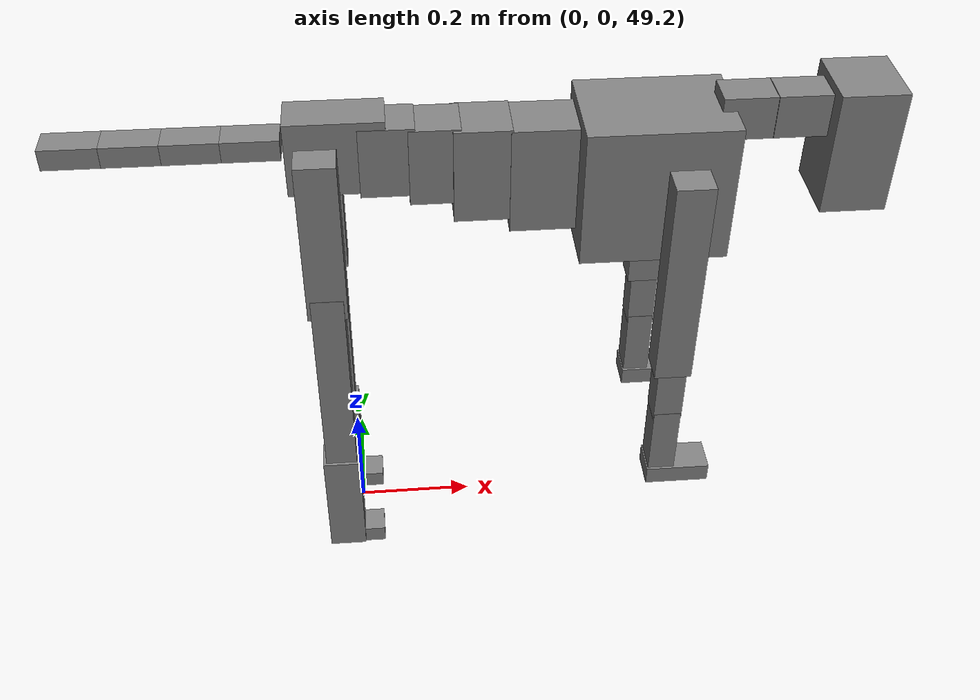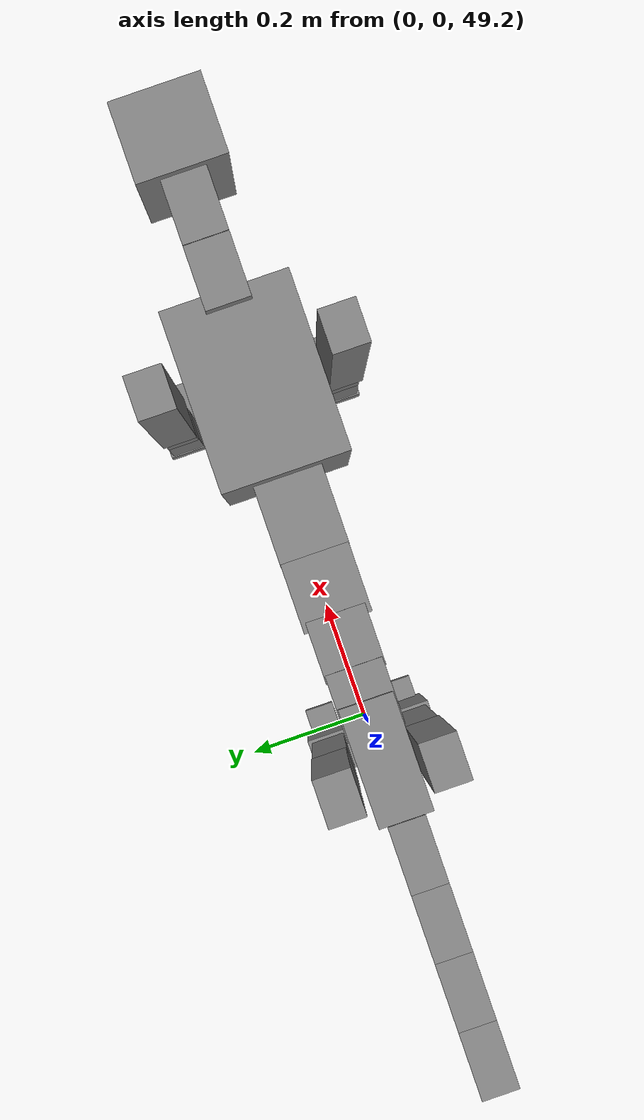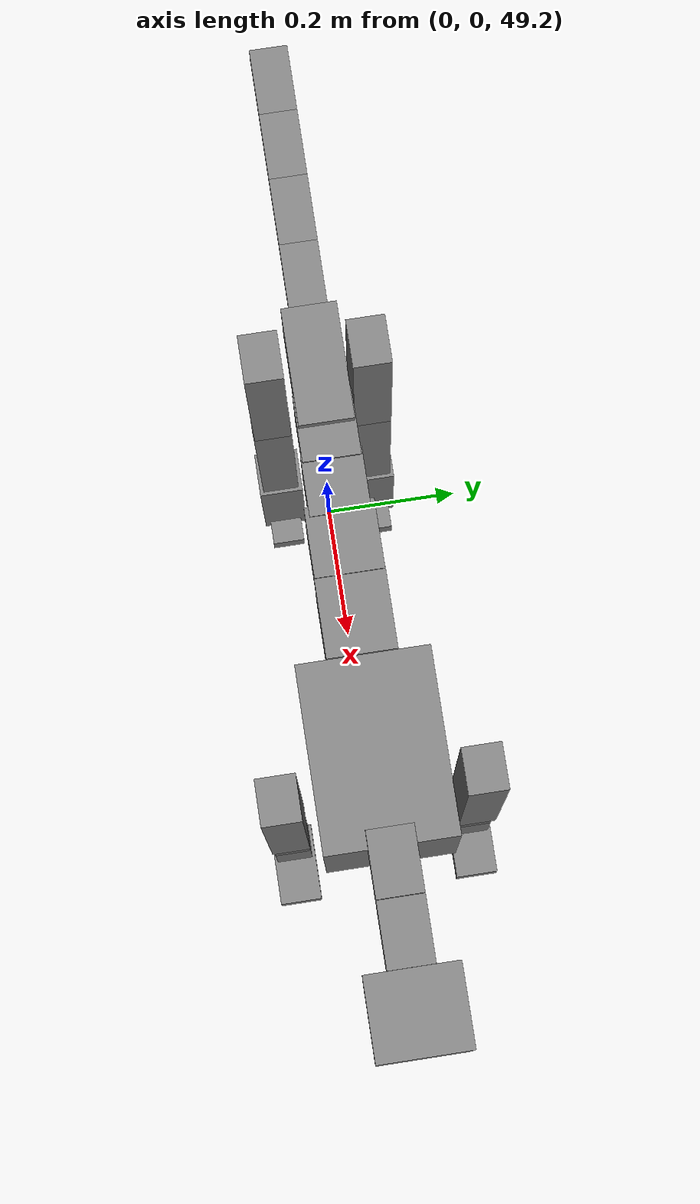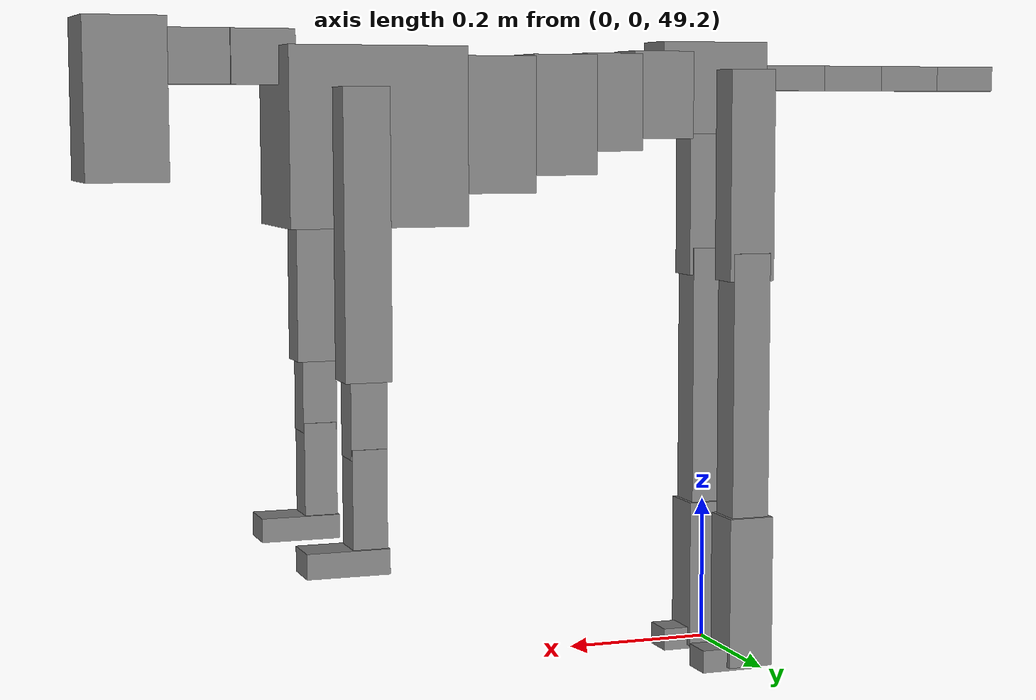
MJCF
<mujoco model="dog">

    <default>
        <joint armature="0.02" stiffness="1" damping="0.2" limited="true"/>
        <geom condim="3" friction="1 0.05 0.05" margin="0.01"/>
        <motor ctrllimited="true" ctrlrange="-1.0 1.0" forcelimited="true" gear="50"/>
    </default>

    <compiler inertiafromgeom="true" angle="radian"/>

    <option timestep="0.016" iterations="50" tolerance="1e-10" solver="Newton" jacobian="dense" cone="pyramidal"/>

    <size nconmax="20000" njmax="60000" nstack="5000000"/>
    <visual>
        <map force="0.1" zfar="30"/>
        <rgba haze="0.15 0.25 0.35 1"/>
        <quality shadowsize="2048"/>
        <global offwidth="800" offheight="800"/>
    </visual>

    <asset>
        <texture type="skybox" builtin="gradient" rgb1="0.3 0.5 0.7" rgb2="0 0 0" width="512" height="512"/>
        <texture name="texplane" type="2d" builtin="checker" rgb1=".2 .3 .4" rgb2=".1 0.15 0.2" width="512" height="512"
                 mark="cross" markrgb=".8 .8 .8"/>
        <texture name="texgeom" type="cube" builtin="flat" mark="cross" width="127" height="1278" rgb1="0.8 0.6 0.4"
                 rgb2="0.8 0.6 0.4" markrgb="1 1 1" random="0.01"/>

        <material name="matplane" reflectance="0.3" texture="texplane" texrepeat="1 1" texuniform="true"/>
        <material name="matgeom" texture="texgeom" texuniform="true" rgba="0.8 0.6 .4 1"/>
    </asset>

    <worldbody>
        <geom name="floor" pos="0 0 0" size="0 0 .25" type="plane" material="matplane" condim="3"/>

        <light directional="false" diffuse=".2 .2 .2" specular="0 0 0" pos="0 0 5" dir="0 0 -1" castshadow="false"/>
        <light mode="targetbodycom" target="torso" directional="false" diffuse=".8 .8 .8" specular="0.3 0.3 0.3"
               pos="0 0 4.0" dir="0 0 -1"/>

        <body name="root" pos="0 0 50">
            <freejoint name="root_1"/>
            <geom type="box" pos="0 0 -0.02" size="0.0774  0.0358  0.063" density="2030"/>

            <body name="spine1" pos="0.054 0 0">
                <joint name="spine1_y" axis="0 1 0" range="0 0.7" limited="true"/>
                <geom type="box" pos="0.02375 0 -0.03" size="0.04375  0.0375  0.05985" density="2030"/>

                <body name="spine2" pos="0.0612 0 0">
                    <joint name="spine2_y" axis="0 1 0" range="-0.15 0.15" limited="true"/>
                    <geom type="box" pos="0.03555  0  -0.04" size="0.04055  0.039  0.06615" density="2030"/>

                    <body name="spine3" pos="0.0730 0 0">
                        <joint name="spine3_y" axis="0 1 0" range="-0.15 0.15" limited="true"/>
                        <geom type="box" pos="0.03555  0  -0.057" size="0.04555  0.0445  0.081" density="2030"/>

                        <body name="spine4" pos="0.0780 0 0">
                            <joint name="spine4_y" axis="0 1 0" range="-0.15 0.15" limited="true"/>
                            <geom type="box" pos="0.05265  0  -0.07" size="0.05265  0.045  0.09135" density="2030"/>

                            <body name="torso" pos="0.1082 0 0">
                                <joint name="torso_y" axis="0 1 0" range="-0.15 0.15" limited="true"/>
                                <geom type="box" pos="0.11925  0  -0.085" size="0.11925  0.085  0.11745"
                                      density="2030"/>

                                <body name="neck1" pos="0.2160  0   0.0180">
                                    <joint name="neck1_y" axis="0 1 0" range="-1.2  -1" limited="true"/>
                                    <geom type="box" pos="0.0423  0  0" size="0.0423  0.03  0.036" density="2325"/>

                                    <body name="neck2" pos="0.0853  0  0">
                                        <joint name="neck2_y" axis="0 1 0" range="0.1  0" limited="true"/>
                                        <geom type="box" pos="0.0423  0  0" size="0.0423  0.03  0.036" density="2325"/>

                                        <body name="head" pos="0.0853  0  0">
                                            <joint name="head_y" axis="0 1 0" range="-0.3  -0.2" limited="true"/>
                                            <geom type="box" pos="0.0531  0  -0.055" size="0.0531  0.06  0.1044"
                                                  density="4030"/>

                                        </body>
                                    </body>
                                </body>

                                <body name="front_shoulder" pos="0.156  0   -0.0480">
                                    <joint name="front_shoulder_y" axis="0 1 0" range="-1 1.5" limited="true"/>
                                    <geom type="box" pos="0 0.13 -0.1601" size="0.0306  0.0261  0.1867" density="1158"/>
                                    <geom type="box" pos="0 -0.13 -0.1601" size="0.0306  0.0261  0.1867"
                                          density="1158"/>

                                    <body name="front_elbow" pos="0  0  -0.3202">
                                        <joint name="front_elbow_y" axis="0 1 0" range="-2 0" limited="true"/>
                                        <geom type="box" pos="0 0.13 -0.0626" size="0.0238  0.0243  0.0626"
                                              density="1081"/>
                                        <geom type="box" pos="0 -0.13 -0.0626" size="0.0238  0.0243  0.0626"
                                              density="1081"/>

                                        <body name="front_wrist" pos="0  0  -0.1253">
                                            <joint name="front_wrist_y" axis="0 1 0" range="-0.2 0" limited="true"/>
                                            <geom type="box" pos="0 0.13 -0.0653" size="0.0228  0.0253  0.0785"
                                                  density="1664"/>
                                            <geom type="box" pos="0 -0.13 -0.0653" size="0.0228  0.0253  0.0785"
                                                  density="1664"/>

                                            <body name="front_finger_end" pos="0  0  -0.1306">
                                                <joint name="front_finger_y" axis="0 1 0" range="-0.4 1"
                                                       limited="true"/>
                                                <geom type="box" pos="0.0298  0.13  -0.0015"
                                                      size="0.0546  0.0298  0.0165" density="1515"/>
                                                <geom type="box" pos="0.0298  -0.13  -0.0015"
                                                      size="0.0546  0.0298  0.0165" density="1515"/>

                                            </body>

                                        </body>
                                    </body>
                                </body>

                            </body>
                        </body>
                    </body>
                </body>
            </body>

            <body name="back_hip" pos="-0.03 0 -0.018">
                <joint name="back_hip_y" axis="0 1 0" range="-1.5 0.3" limited="true"/>
                <geom type="box" pos="0 0.07 -0.1220" size="0.0326  0.0256  0.1448" density="1154"/>
                <geom type="box" pos="0 -0.07 -0.1220" size="0.0326  0.0256  0.1448" density="1154"/>

                <body name="back_knee" pos="0  0  -0.2441">
                    <joint name="back_knee_y" axis="0 1 0" range="0 2.8" limited="true"/>
                    <geom type="box" pos="0 0.07 -0.1813" size="0.0270  0.0266  0.1969" density="1227"/>
                    <geom type="box" pos="0 -0.07 -0.1813" size="0.0270  0.0266  0.1969" density="1227"/>

                    <body name="back_ankle" pos="0  0  -0.3627">
                        <joint name="back_ankle_y" axis="0 1 0" range="-2.2 0" limited="true"/>
                        <geom type="box" pos="0 0.07 -0.0940" size="0.0322  0.0322  0.1052" density="1284"/>
                        <geom type="box" pos="0 -0.07 -0.0940" size="0.0322  0.0322  0.1052" density="1284"/>

                        <body name="back_toe_end" pos="0  0  -0.1880">
                            <joint name="back_toe_y" axis="0 1 0" range="-0.4 1" limited="true"/>
                            <geom type="box" pos="0.0241  0.07  -0.0007" size="0.0442  0.0241  0.0157" density="1515"/>
                            <geom type="box" pos="0.0241  -0.07  -0.0007" size="0.0442  0.0241  0.0157" density="1515"/>

                        </body>
                    </body>
                </body>
            </body>

            <body name="tail1" pos="-0.074 0 -0.006">
                <joint name="tail1_y" axis="0 1 0" range="-0.2 0.2" limited="true"/>
                <geom type="box" pos="-0.0536  0  0" size="0.045  0.025  0.0175" density="1587"/>

                <body name="tail2" pos="-0.09 0 0">
                    <joint name="tail2_y" axis="0 1 0" range="-0.2 0.2" limited="true"/>
                    <geom type="box" pos="-0.0536  0  0" size="0.045  0.025  0.0175" density="1587"/>

                    <body name="tail3" pos="-0.09 0 0">
                        <joint name="tail3_y" axis="0 1 0" range="-0.2 0.2" limited="true"/>
                        <geom type="box" pos="-0.0536  0  0" size="0.045  0.025  0.0175" density="1587"/>

                        <body name="tail4" pos="-0.09 0 0">
                            <joint name="tail4_y" axis="0 1 0" range="-0.2 0.2" limited="true"/>
                            <geom type="box" pos="-0.0536  0  0" size="0.045  0.025  0.0175" density="1587"/>

                        </body>
                    </body>
                </body>
            </body>
        </body>
    </worldbody>

    <actuator>
        <motor joint="spine1_y" forcerange="-150 150     "/>
        <motor joint="spine2_y" forcerange="-150 150     "/>
        <motor joint="spine3_y" forcerange="-150 150     "/>
        <motor joint="spine4_y" forcerange="-150 150     "/>
        <motor joint="torso_y" forcerange="-150 150     "/>
        <motor joint="neck1_y" forcerange="-100 100       "/>
        <motor joint="neck2_y" forcerange="-100 100       "/>
        <motor joint="head_y" forcerange="-150 150       "/>
        <motor joint="front_shoulder_y" forcerange="-130.25 143.92"/>
        <motor joint="front_elbow_y" forcerange="-162.86 113.91"/>
        <motor joint="front_wrist_y" forcerange="-75.31 126.99"/>
        <motor joint="front_finger_y" forcerange="-40.68 78.20"/>
        <motor joint="back_hip_y" forcerange="-245.42 295.48"/>
        <motor joint="back_knee_y" forcerange="-349.43 237.16"/>
        <motor joint="back_angle_y" forcerange="-214.50 200.17"/>
        <motor joint="back_toe_y" forcerange="-72.07 40.82"/>
        <motor joint="tail1_y" forcerange="-50 50     "/>
        <motor joint="tail2_y" forcerange="-50 50     "/>
        <motor joint="tail3_y" forcerange="-50 50     "/>
        <motor joint="tail4_y" forcerange="-50 50     "/>
    </actuator>
</mujoco>
